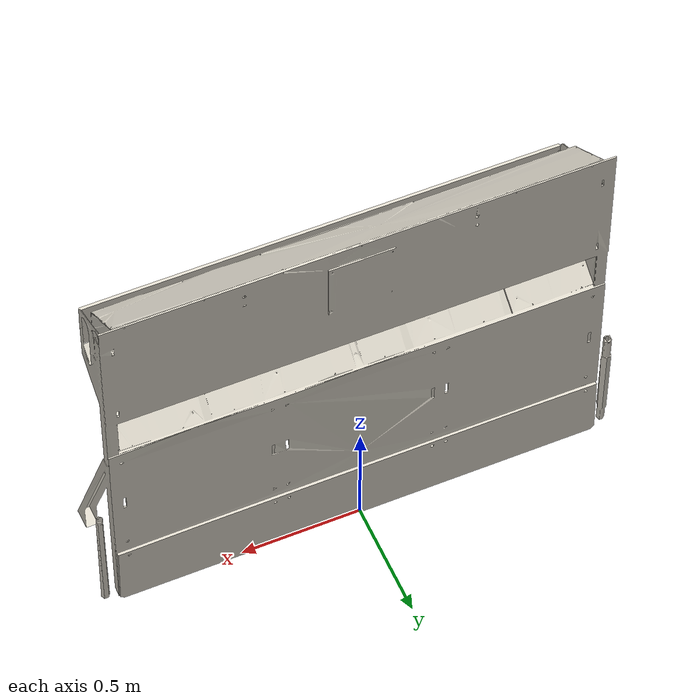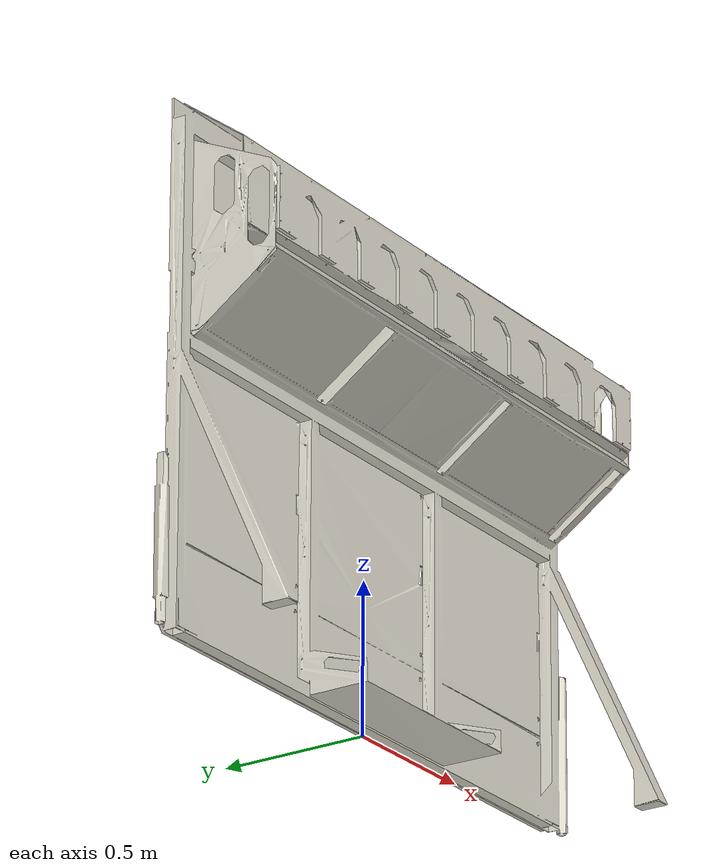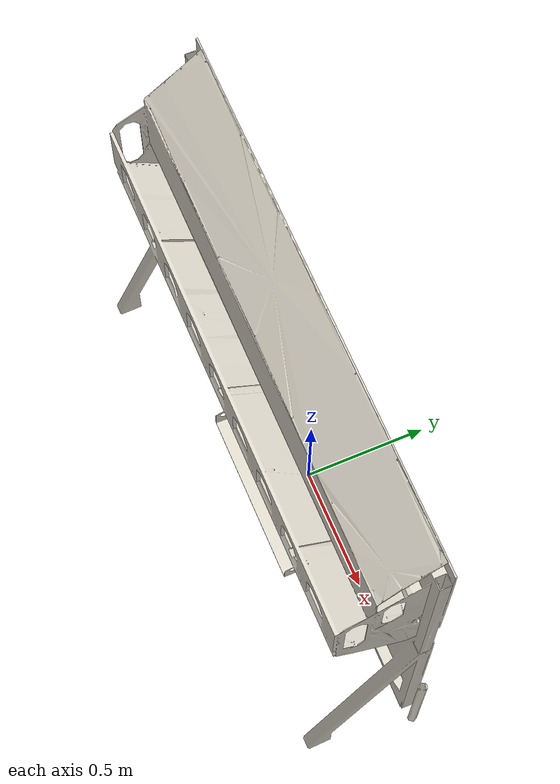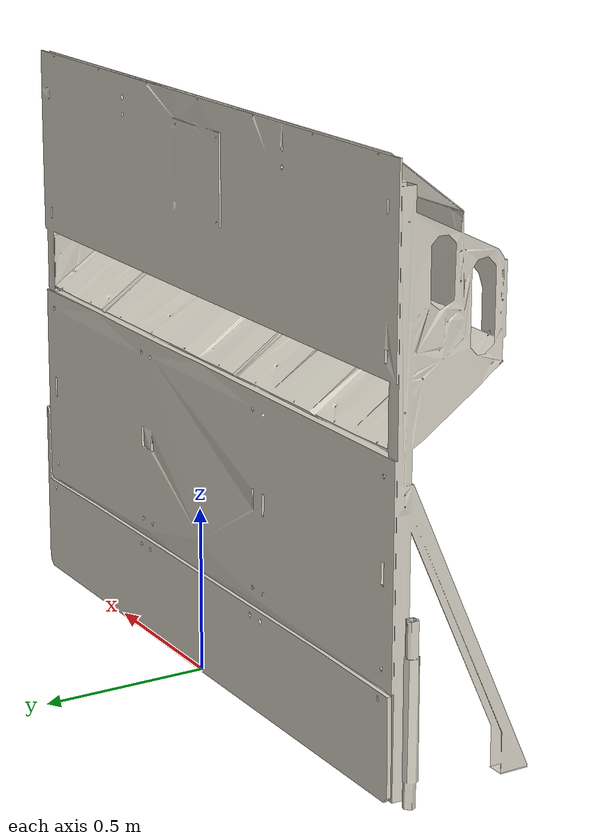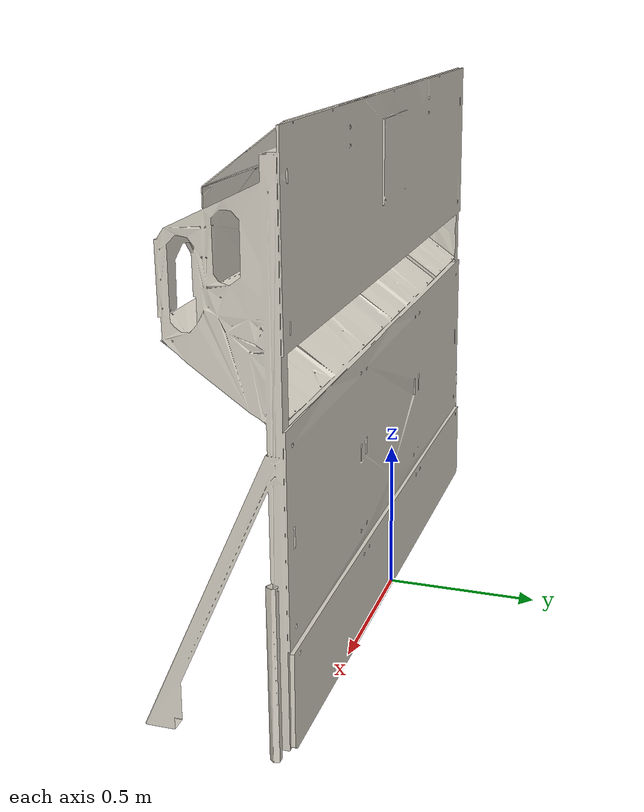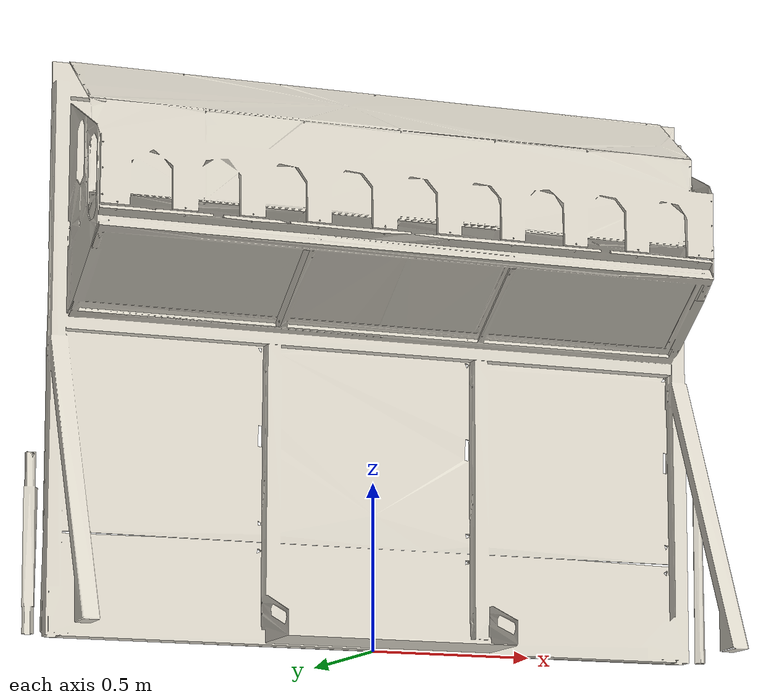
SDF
<?xml version="1.0"?>
<sdf version="1.8">
  <model name="reefscape_coral_station">
    <static>true</static>

    <link name="link">
      <visual name="visual">
        <geometry>
          <mesh>
            <uri>meshes/coral_station.stl</uri>
            <scale>1 1 1</scale>
          </mesh>
        </geometry>
        <material>
          <ambient>0.42 0.41 0.39 1</ambient>
          <diffuse>0.85 0.83 0.78 1</diffuse>
        </material>
      </visual>

      <collision name="collision">
        <geometry>
          <mesh>
            <uri>meshes/coral_station.stl</uri>
            <scale>1 1 1</scale>
          </mesh>
        </geometry>
      </collision>
    </link>
  </model>
</sdf>
